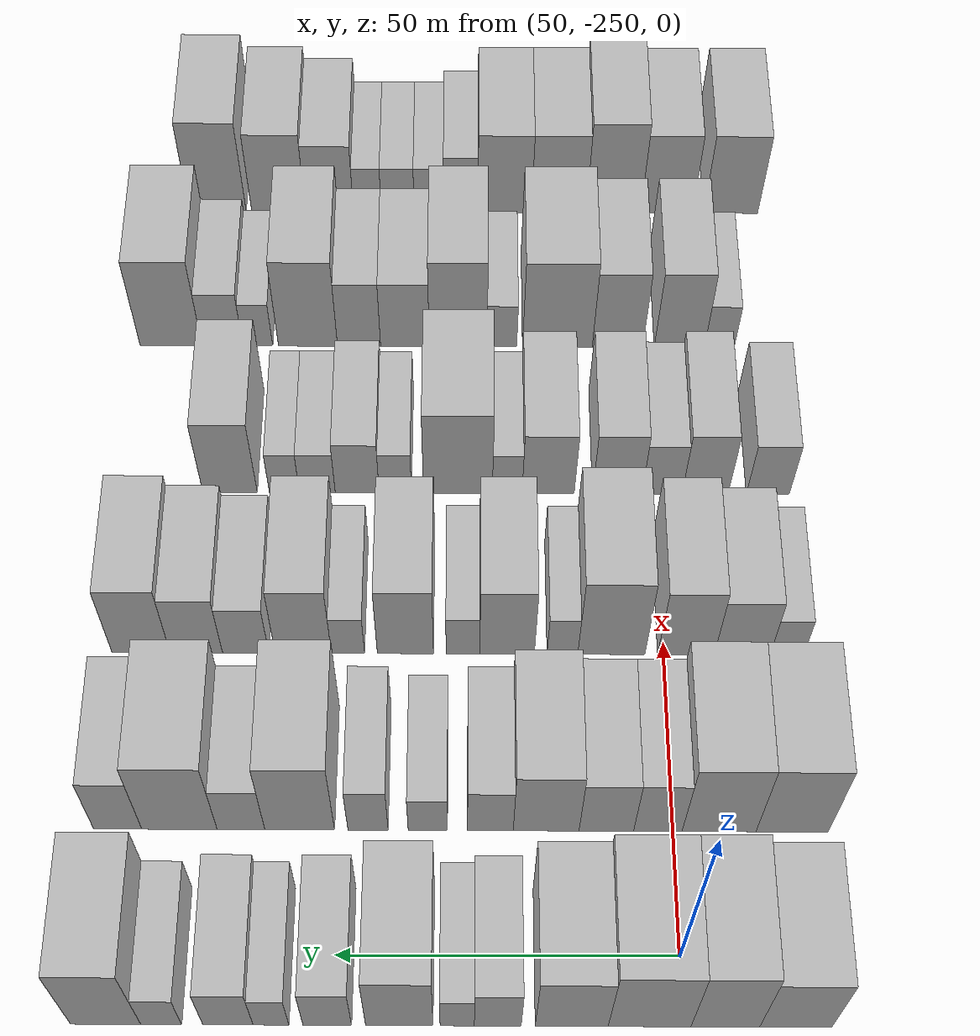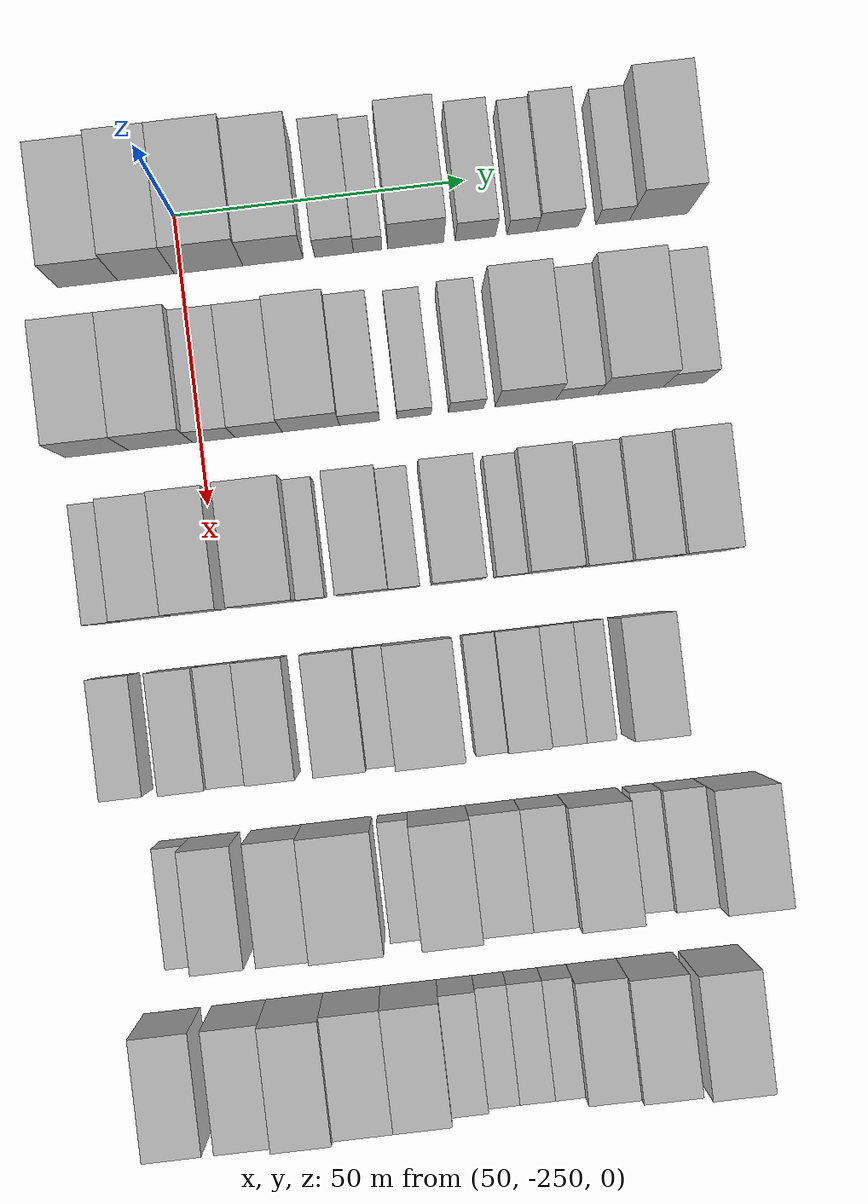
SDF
<sdf version="1.6">
 <world name="default">
  <model name="building_17">
   <static>1</static>
   <pose>50.0000 -265.9230 0 0.000000 0.000000 0.000000</pose>
   <link name="link">
    <pose>0 0 10.50 0 0 0</pose>
    <collision name="collision"><geometry><box><size>20.0000 10.2596 21.0000</size></box></geometry></collision>
    <visual name="visual">
     <cast_shadows>0</cast_shadows>
     <geometry><box><size>20.0000 10.2596 21.0000</size></box></geometry>
     <material>
      <script>
       <uri>model://HANNAS_wall/materials/scripts</uri>
       <uri>model://HANNAS_wall/materials/textures</uri>
       <name>vrc/HANNAS_wall</name>
      </script>
     </material>
    </visual>
   </link>
  </model>
  <model name="building_18">
   <static>1</static>
   <pose>50.0000 -255.9049 0 0.000000 0.000000 0.000000</pose>
   <link name="link">
    <pose>0 0 12.00 0 0 0</pose>
    <collision name="collision"><geometry><box><size>20.0000 9.7765 24.0000</size></box></geometry></collision>
    <visual name="visual">
     <cast_shadows>0</cast_shadows>
     <geometry><box><size>20.0000 9.7765 24.0000</size></box></geometry>
     <material>
      <script>
       <uri>model://HANNAS_wall/materials/scripts</uri>
       <uri>model://HANNAS_wall/materials/textures</uri>
       <name>vrc/HANNAS_wall</name>
      </script>
     </material>
    </visual>
   </link>
  </model>
  <model name="building_19">
   <static>1</static>
   <pose>50.0000 -245.1341 0 0.000000 0.000000 0.000000</pose>
   <link name="link">
    <pose>0 0 12.00 0 0 0</pose>
    <collision name="collision"><geometry><box><size>20.0000 11.7652 24.0000</size></box></geometry></collision>
    <visual name="visual">
     <cast_shadows>0</cast_shadows>
     <geometry><box><size>20.0000 11.7652 24.0000</size></box></geometry>
     <material>
      <script>
       <uri>model://HANNAS_wall/materials/scripts</uri>
       <uri>model://HANNAS_wall/materials/textures</uri>
       <name>vrc/HANNAS_wall</name>
      </script>
     </material>
    </visual>
   </link>
  </model>
  <model name="building_20">
   <static>1</static>
   <pose>50.0000 -234.0665 0 0.000000 0.000000 0.000000</pose>
   <link name="link">
    <pose>0 0 10.50 0 0 0</pose>
    <collision name="collision"><geometry><box><size>20.0000 10.3699 21.0000</size></box></geometry></collision>
    <visual name="visual">
     <cast_shadows>0</cast_shadows>
     <geometry><box><size>20.0000 10.3699 21.0000</size></box></geometry>
     <material>
      <script>
       <uri>model://HANNAS_wall/materials/scripts</uri>
       <uri>model://HANNAS_wall/materials/textures</uri>
       <name>vrc/HANNAS_wall</name>
      </script>
     </material>
    </visual>
   </link>
  </model>
  <model name="building_21">
   <static>1</static>
   <pose>50.0000 -223.5535 0 0.000000 0.000000 0.000000</pose>
   <link name="link">
    <pose>0 0 7.50 0 0 0</pose>
    <collision name="collision"><geometry><box><size>20.0000 6.6561 15.0000</size></box></geometry></collision>
    <visual name="visual">
     <cast_shadows>0</cast_shadows>
     <geometry><box><size>20.0000 6.6561 15.0000</size></box></geometry>
     <material>
      <script>
       <uri>model://HANNAS_wall/materials/scripts</uri>
       <uri>model://HANNAS_wall/materials/textures</uri>
       <name>vrc/HANNAS_wall</name>
      </script>
     </material>
    </visual>
   </link>
  </model>
  <model name="building_22">
   <static>1</static>
   <pose>50.0000 -217.7950 0 0.000000 0.000000 0.000000</pose>
   <link name="link">
    <pose>0 0 6.00 0 0 0</pose>
    <collision name="collision"><geometry><box><size>20.0000 4.8610 12.0000</size></box></geometry></collision>
    <visual name="visual">
     <cast_shadows>0</cast_shadows>
     <geometry><box><size>20.0000 4.8610 12.0000</size></box></geometry>
     <material>
      <script>
       <uri>model://HANNAS_wall/materials/scripts</uri>
       <uri>model://HANNAS_wall/materials/textures</uri>
       <name>vrc/HANNAS_wall</name>
      </script>
     </material>
    </visual>
   </link>
  </model>
  <model name="building_23">
   <static>1</static>
   <pose>50.0000 -209.5757 0 0.000000 0.000000 0.000000</pose>
   <link name="link">
    <pose>0 0 10.50 0 0 0</pose>
    <collision name="collision"><geometry><box><size>20.0000 9.5776 21.0000</size></box></geometry></collision>
    <visual name="visual">
     <cast_shadows>0</cast_shadows>
     <geometry><box><size>20.0000 9.5776 21.0000</size></box></geometry>
     <material>
      <script>
       <uri>model://HANNAS_wall/materials/scripts</uri>
       <uri>model://HANNAS_wall/materials/textures</uri>
       <name>vrc/HANNAS_wall</name>
      </script>
     </material>
    </visual>
   </link>
  </model>
  <model name="building_24">
   <static>1</static>
   <pose>50.0000 -199.3336 0 0.000000 0.000000 0.000000</pose>
   <link name="link">
    <pose>0 0 7.50 0 0 0</pose>
    <collision name="collision"><geometry><box><size>20.0000 6.9065 15.0000</size></box></geometry></collision>
    <visual name="visual">
     <cast_shadows>0</cast_shadows>
     <geometry><box><size>20.0000 6.9065 15.0000</size></box></geometry>
     <material>
      <script>
       <uri>model://HANNAS_wall/materials/scripts</uri>
       <uri>model://HANNAS_wall/materials/textures</uri>
       <name>vrc/HANNAS_wall</name>
      </script>
     </material>
    </visual>
   </link>
  </model>
  <model name="building_25">
   <static>1</static>
   <pose>50.0000 -191.3330 0 0.000000 0.000000 0.000000</pose>
   <link name="link">
    <pose>0 0 6.00 0 0 0</pose>
    <collision name="collision"><geometry><box><size>20.0000 5.0947 12.0000</size></box></geometry></collision>
    <visual name="visual">
     <cast_shadows>0</cast_shadows>
     <geometry><box><size>20.0000 5.0947 12.0000</size></box></geometry>
     <material>
      <script>
       <uri>model://HANNAS_wall/materials/scripts</uri>
       <uri>model://HANNAS_wall/materials/textures</uri>
       <name>vrc/HANNAS_wall</name>
      </script>
     </material>
    </visual>
   </link>
  </model>
  <model name="building_26">
   <static>1</static>
   <pose>50.0000 -185.2077 0 0.000000 0.000000 0.000000</pose>
   <link name="link">
    <pose>0 0 7.50 0 0 0</pose>
    <collision name="collision"><geometry><box><size>20.0000 7.1559 15.0000</size></box></geometry></collision>
    <visual name="visual">
     <cast_shadows>0</cast_shadows>
     <geometry><box><size>20.0000 7.1559 15.0000</size></box></geometry>
     <material>
      <script>
       <uri>model://HANNAS_wall/materials/scripts</uri>
       <uri>model://HANNAS_wall/materials/textures</uri>
       <name>vrc/HANNAS_wall</name>
      </script>
     </material>
    </visual>
   </link>
  </model>
  <model name="building_27">
   <static>1</static>
   <pose>50.0000 -175.7184 0 0.000000 0.000000 0.000000</pose>
   <link name="link">
    <pose>0 0 6.00 0 0 0</pose>
    <collision name="collision"><geometry><box><size>20.0000 5.8227 12.0000</size></box></geometry></collision>
    <visual name="visual">
     <cast_shadows>0</cast_shadows>
     <geometry><box><size>20.0000 5.8227 12.0000</size></box></geometry>
     <material>
      <script>
       <uri>model://HANNAS_wall/materials/scripts</uri>
       <uri>model://HANNAS_wall/materials/textures</uri>
       <name>vrc/HANNAS_wall</name>
      </script>
     </material>
    </visual>
   </link>
  </model>
  <model name="building_28">
   <static>1</static>
   <pose>50.0000 -167.8051 0 0.000000 0.000000 0.000000</pose>
   <link name="link">
    <pose>0 0 12.00 0 0 0</pose>
    <collision name="collision"><geometry><box><size>20.0000 10.0038 24.0000</size></box></geometry></collision>
    <visual name="visual">
     <cast_shadows>0</cast_shadows>
     <geometry><box><size>20.0000 10.0038 24.0000</size></box></geometry>
     <material>
      <script>
       <uri>model://HANNAS_wall/materials/scripts</uri>
       <uri>model://HANNAS_wall/materials/textures</uri>
       <name>vrc/HANNAS_wall</name>
      </script>
     </material>
    </visual>
   </link>
  </model>
  <model name="building_123">
   <static>1</static>
   <pose>79.0000 -267.7699 0 0.000000 0.000000 0.000000</pose>
   <link name="link">
    <pose>0 0 12.00 0 0 0</pose>
    <collision name="collision"><geometry><box><size>20.0000 10.8121 24.0000</size></box></geometry></collision>
    <visual name="visual">
     <cast_shadows>0</cast_shadows>
     <geometry><box><size>20.0000 10.8121 24.0000</size></box></geometry>
     <material>
      <script>
       <uri>model://HANNAS_wall/materials/scripts</uri>
       <uri>model://HANNAS_wall/materials/textures</uri>
       <name>vrc/HANNAS_wall</name>
      </script>
     </material>
    </visual>
   </link>
  </model>
  <model name="building_124">
   <static>1</static>
   <pose>79.0000 -256.8291 0 0.000000 0.000000 0.000000</pose>
   <link name="link">
    <pose>0 0 12.00 0 0 0</pose>
    <collision name="collision"><geometry><box><size>20.0000 11.0696 24.0000</size></box></geometry></collision>
    <visual name="visual">
     <cast_shadows>0</cast_shadows>
     <geometry><box><size>20.0000 11.0696 24.0000</size></box></geometry>
     <material>
      <script>
       <uri>model://HANNAS_wall/materials/scripts</uri>
       <uri>model://HANNAS_wall/materials/textures</uri>
       <name>vrc/HANNAS_wall</name>
      </script>
     </material>
    </visual>
   </link>
  </model>
  <model name="building_125">
   <static>1</static>
   <pose>79.0000 -247.6704 0 0.000000 0.000000 0.000000</pose>
   <link name="link">
    <pose>0 0 9.00 0 0 0</pose>
    <collision name="collision"><geometry><box><size>20.0000 7.2478 18.0000</size></box></geometry></collision>
    <visual name="visual">
     <cast_shadows>0</cast_shadows>
     <geometry><box><size>20.0000 7.2478 18.0000</size></box></geometry>
     <material>
      <script>
       <uri>model://HANNAS_wall/materials/scripts</uri>
       <uri>model://HANNAS_wall/materials/textures</uri>
       <name>vrc/HANNAS_wall</name>
      </script>
     </material>
    </visual>
   </link>
  </model>
  <model name="building_126">
   <static>1</static>
   <pose>79.0000 -239.9628 0 0.000000 0.000000 0.000000</pose>
   <link name="link">
    <pose>0 0 9.00 0 0 0</pose>
    <collision name="collision"><geometry><box><size>20.0000 8.1674 18.0000</size></box></geometry></collision>
    <visual name="visual">
     <cast_shadows>0</cast_shadows>
     <geometry><box><size>20.0000 8.1674 18.0000</size></box></geometry>
     <material>
      <script>
       <uri>model://HANNAS_wall/materials/scripts</uri>
       <uri>model://HANNAS_wall/materials/textures</uri>
       <name>vrc/HANNAS_wall</name>
      </script>
     </material>
    </visual>
   </link>
  </model>
  <model name="building_127">
   <static>1</static>
   <pose>79.0000 -230.9599 0 0.000000 0.000000 0.000000</pose>
   <link name="link">
    <pose>0 0 10.50 0 0 0</pose>
    <collision name="collision"><geometry><box><size>20.0000 9.8385 21.0000</size></box></geometry></collision>
    <visual name="visual">
     <cast_shadows>0</cast_shadows>
     <geometry><box><size>20.0000 9.8385 21.0000</size></box></geometry>
     <material>
      <script>
       <uri>model://HANNAS_wall/materials/scripts</uri>
       <uri>model://HANNAS_wall/materials/textures</uri>
       <name>vrc/HANNAS_wall</name>
      </script>
     </material>
    </visual>
   </link>
  </model>
  <model name="building_128">
   <static>1</static>
   <pose>79.0000 -222.6155 0 0.000000 0.000000 0.000000</pose>
   <link name="link">
    <pose>0 0 7.50 0 0 0</pose>
    <collision name="collision"><geometry><box><size>20.0000 6.8504 15.0000</size></box></geometry></collision>
    <visual name="visual">
     <cast_shadows>0</cast_shadows>
     <geometry><box><size>20.0000 6.8504 15.0000</size></box></geometry>
     <material>
      <script>
       <uri>model://HANNAS_wall/materials/scripts</uri>
       <uri>model://HANNAS_wall/materials/textures</uri>
       <name>vrc/HANNAS_wall</name>
      </script>
     </material>
    </visual>
   </link>
  </model>
  <model name="building_129">
   <static>1</static>
   <pose>79.0000 -213.2564 0 0.000000 0.000000 0.000000</pose>
   <link name="link">
    <pose>0 0 6.00 0 0 0</pose>
    <collision name="collision"><geometry><box><size>20.0000 5.8678 12.0000</size></box></geometry></collision>
    <visual name="visual">
     <cast_shadows>0</cast_shadows>
     <geometry><box><size>20.0000 5.8678 12.0000</size></box></geometry>
     <material>
      <script>
       <uri>model://HANNAS_wall/materials/scripts</uri>
       <uri>model://HANNAS_wall/materials/textures</uri>
       <name>vrc/HANNAS_wall</name>
      </script>
     </material>
    </visual>
   </link>
  </model>
  <model name="building_130">
   <static>1</static>
   <pose>79.0000 -204.3151 0 0.000000 0.000000 0.000000</pose>
   <link name="link">
    <pose>0 0 7.50 0 0 0</pose>
    <collision name="collision"><geometry><box><size>20.0000 6.0149 15.0000</size></box></geometry></collision>
    <visual name="visual">
     <cast_shadows>0</cast_shadows>
     <geometry><box><size>20.0000 6.0149 15.0000</size></box></geometry>
     <material>
      <script>
       <uri>model://HANNAS_wall/materials/scripts</uri>
       <uri>model://HANNAS_wall/materials/textures</uri>
       <name>vrc/HANNAS_wall</name>
      </script>
     </material>
    </visual>
   </link>
  </model>
  <model name="building_131">
   <static>1</static>
   <pose>79.0000 -194.0829 0 0.000000 0.000000 0.000000</pose>
   <link name="link">
    <pose>0 0 12.00 0 0 0</pose>
    <collision name="collision"><geometry><box><size>20.0000 10.4495 24.0000</size></box></geometry></collision>
    <visual name="visual">
     <cast_shadows>0</cast_shadows>
     <geometry><box><size>20.0000 10.4495 24.0000</size></box></geometry>
     <material>
      <script>
       <uri>model://HANNAS_wall/materials/scripts</uri>
       <uri>model://HANNAS_wall/materials/textures</uri>
       <name>vrc/HANNAS_wall</name>
      </script>
     </material>
    </visual>
   </link>
  </model>
  <model name="building_132">
   <static>1</static>
   <pose>79.0000 -185.2894 0 0.000000 0.000000 0.000000</pose>
   <link name="link">
    <pose>0 0 7.50 0 0 0</pose>
    <collision name="collision"><geometry><box><size>20.0000 7.1373 15.0000</size></box></geometry></collision>
    <visual name="visual">
     <cast_shadows>0</cast_shadows>
     <geometry><box><size>20.0000 7.1373 15.0000</size></box></geometry>
     <material>
      <script>
       <uri>model://HANNAS_wall/materials/scripts</uri>
       <uri>model://HANNAS_wall/materials/textures</uri>
       <name>vrc/HANNAS_wall</name>
      </script>
     </material>
    </visual>
   </link>
  </model>
  <model name="building_133">
   <static>1</static>
   <pose>79.0000 -176.0762 0 0.000000 0.000000 0.000000</pose>
   <link name="link">
    <pose>0 0 12.00 0 0 0</pose>
    <collision name="collision"><geometry><box><size>20.0000 11.2892 24.0000</size></box></geometry></collision>
    <visual name="visual">
     <cast_shadows>0</cast_shadows>
     <geometry><box><size>20.0000 11.2892 24.0000</size></box></geometry>
     <material>
      <script>
       <uri>model://HANNAS_wall/materials/scripts</uri>
       <uri>model://HANNAS_wall/materials/textures</uri>
       <name>vrc/HANNAS_wall</name>
      </script>
     </material>
    </visual>
   </link>
  </model>
  <model name="building_134">
   <static>1</static>
   <pose>79.0000 -166.8294 0 0.000000 0.000000 0.000000</pose>
   <link name="link">
    <pose>0 0 9.00 0 0 0</pose>
    <collision name="collision"><geometry><box><size>20.0000 7.2045 18.0000</size></box></geometry></collision>
    <visual name="visual">
     <cast_shadows>0</cast_shadows>
     <geometry><box><size>20.0000 7.2045 18.0000</size></box></geometry>
     <material>
      <script>
       <uri>model://HANNAS_wall/materials/scripts</uri>
       <uri>model://HANNAS_wall/materials/textures</uri>
       <name>vrc/HANNAS_wall</name>
      </script>
     </material>
    </visual>
   </link>
  </model>
  <model name="building_238">
   <static>1</static>
   <pose>108.0000 -269.2934 0 0.000000 0.000000 0.000000</pose>
   <link name="link">
    <pose>0 0 6.00 0 0 0</pose>
    <collision name="collision"><geometry><box><size>20.0000 5.2739 12.0000</size></box></geometry></collision>
    <visual name="visual">
     <cast_shadows>0</cast_shadows>
     <geometry><box><size>20.0000 5.2739 12.0000</size></box></geometry>
     <material>
      <script>
       <uri>model://HANNAS_wall/materials/scripts</uri>
       <uri>model://HANNAS_wall/materials/textures</uri>
       <name>vrc/HANNAS_wall</name>
      </script>
     </material>
    </visual>
   </link>
  </model>
  <model name="building_239">
   <static>1</static>
   <pose>108.0000 -262.2684 0 0.000000 0.000000 0.000000</pose>
   <link name="link">
    <pose>0 0 9.00 0 0 0</pose>
    <collision name="collision"><geometry><box><size>20.0000 8.7761 18.0000</size></box></geometry></collision>
    <visual name="visual">
     <cast_shadows>0</cast_shadows>
     <geometry><box><size>20.0000 8.7761 18.0000</size></box></geometry>
     <material>
      <script>
       <uri>model://HANNAS_wall/materials/scripts</uri>
       <uri>model://HANNAS_wall/materials/textures</uri>
       <name>vrc/HANNAS_wall</name>
      </script>
     </material>
    </visual>
   </link>
  </model>
  <model name="building_240">
   <static>1</static>
   <pose>108.0000 -253.4354 0 0.000000 0.000000 0.000000</pose>
   <link name="link">
    <pose>0 0 10.50 0 0 0</pose>
    <collision name="collision"><geometry><box><size>20.0000 8.8898 21.0000</size></box></geometry></collision>
    <visual name="visual">
     <cast_shadows>0</cast_shadows>
     <geometry><box><size>20.0000 8.8898 21.0000</size></box></geometry>
     <material>
      <script>
       <uri>model://HANNAS_wall/materials/scripts</uri>
       <uri>model://HANNAS_wall/materials/textures</uri>
       <name>vrc/HANNAS_wall</name>
      </script>
     </material>
    </visual>
   </link>
  </model>
  <model name="building_241">
   <static>1</static>
   <pose>108.0000 -241.7194 0 0.000000 0.000000 0.000000</pose>
   <link name="link">
    <pose>0 0 12.00 0 0 0</pose>
    <collision name="collision"><geometry><box><size>20.0000 10.5423 24.0000</size></box></geometry></collision>
    <visual name="visual">
     <cast_shadows>0</cast_shadows>
     <geometry><box><size>20.0000 10.5423 24.0000</size></box></geometry>
     <material>
      <script>
       <uri>model://HANNAS_wall/materials/scripts</uri>
       <uri>model://HANNAS_wall/materials/textures</uri>
       <name>vrc/HANNAS_wall</name>
      </script>
     </material>
    </visual>
   </link>
  </model>
  <model name="building_242">
   <static>1</static>
   <pose>108.0000 -234.0365 0 0.000000 0.000000 0.000000</pose>
   <link name="link">
    <pose>0 0 6.00 0 0 0</pose>
    <collision name="collision"><geometry><box><size>20.0000 4.8235 12.0000</size></box></geometry></collision>
    <visual name="visual">
     <cast_shadows>0</cast_shadows>
     <geometry><box><size>20.0000 4.8235 12.0000</size></box></geometry>
     <material>
      <script>
       <uri>model://HANNAS_wall/materials/scripts</uri>
       <uri>model://HANNAS_wall/materials/textures</uri>
       <name>vrc/HANNAS_wall</name>
      </script>
     </material>
    </visual>
   </link>
  </model>
  <model name="building_243">
   <static>1</static>
   <pose>108.0000 -225.3271 0 0.000000 0.000000 0.000000</pose>
   <link name="link">
    <pose>0 0 10.50 0 0 0</pose>
    <collision name="collision"><geometry><box><size>20.0000 8.5953 21.0000</size></box></geometry></collision>
    <visual name="visual">
     <cast_shadows>0</cast_shadows>
     <geometry><box><size>20.0000 8.5953 21.0000</size></box></geometry>
     <material>
      <script>
       <uri>model://HANNAS_wall/materials/scripts</uri>
       <uri>model://HANNAS_wall/materials/textures</uri>
       <name>vrc/HANNAS_wall</name>
      </script>
     </material>
    </visual>
   </link>
  </model>
  <model name="building_244">
   <static>1</static>
   <pose>108.0000 -218.4014 0 0.000000 0.000000 0.000000</pose>
   <link name="link">
    <pose>0 0 6.00 0 0 0</pose>
    <collision name="collision"><geometry><box><size>20.0000 5.2560 12.0000</size></box></geometry></collision>
    <visual name="visual">
     <cast_shadows>0</cast_shadows>
     <geometry><box><size>20.0000 5.2560 12.0000</size></box></geometry>
     <material>
      <script>
       <uri>model://HANNAS_wall/materials/scripts</uri>
       <uri>model://HANNAS_wall/materials/textures</uri>
       <name>vrc/HANNAS_wall</name>
      </script>
     </material>
    </visual>
   </link>
  </model>
  <model name="building_245">
   <static>1</static>
   <pose>108.0000 -209.3678 0 0.000000 0.000000 0.000000</pose>
   <link name="link">
    <pose>0 0 10.50 0 0 0</pose>
    <collision name="collision"><geometry><box><size>20.0000 8.8113 21.0000</size></box></geometry></collision>
    <visual name="visual">
     <cast_shadows>0</cast_shadows>
     <geometry><box><size>20.0000 8.8113 21.0000</size></box></geometry>
     <material>
      <script>
       <uri>model://HANNAS_wall/materials/scripts</uri>
       <uri>model://HANNAS_wall/materials/textures</uri>
       <name>vrc/HANNAS_wall</name>
      </script>
     </material>
    </visual>
   </link>
  </model>
  <model name="building_246">
   <static>1</static>
   <pose>108.0000 -200.3536 0 0.000000 0.000000 0.000000</pose>
   <link name="link">
    <pose>0 0 6.00 0 0 0</pose>
    <collision name="collision"><geometry><box><size>20.0000 5.2170 12.0000</size></box></geometry></collision>
    <visual name="visual">
     <cast_shadows>0</cast_shadows>
     <geometry><box><size>20.0000 5.2170 12.0000</size></box></geometry>
     <material>
      <script>
       <uri>model://HANNAS_wall/materials/scripts</uri>
       <uri>model://HANNAS_wall/materials/textures</uri>
       <name>vrc/HANNAS_wall</name>
      </script>
     </material>
    </visual>
   </link>
  </model>
  <model name="building_247">
   <static>1</static>
   <pose>108.0000 -193.3295 0 0.000000 0.000000 0.000000</pose>
   <link name="link">
    <pose>0 0 10.50 0 0 0</pose>
    <collision name="collision"><geometry><box><size>20.0000 8.8313 21.0000</size></box></geometry></collision>
    <visual name="visual">
     <cast_shadows>0</cast_shadows>
     <geometry><box><size>20.0000 8.8313 21.0000</size></box></geometry>
     <material>
      <script>
       <uri>model://HANNAS_wall/materials/scripts</uri>
       <uri>model://HANNAS_wall/materials/textures</uri>
       <name>vrc/HANNAS_wall</name>
      </script>
     </material>
    </visual>
   </link>
  </model>
  <model name="building_248">
   <static>1</static>
   <pose>108.0000 -184.2776 0 0.000000 0.000000 0.000000</pose>
   <link name="link">
    <pose>0 0 7.50 0 0 0</pose>
    <collision name="collision"><geometry><box><size>20.0000 7.2723 15.0000</size></box></geometry></collision>
    <visual name="visual">
     <cast_shadows>0</cast_shadows>
     <geometry><box><size>20.0000 7.2723 15.0000</size></box></geometry>
     <material>
      <script>
       <uri>model://HANNAS_wall/materials/scripts</uri>
       <uri>model://HANNAS_wall/materials/textures</uri>
       <name>vrc/HANNAS_wall</name>
      </script>
     </material>
    </visual>
   </link>
  </model>
  <model name="building_249">
   <static>1</static>
   <pose>108.0000 -176.5142 0 0.000000 0.000000 0.000000</pose>
   <link name="link">
    <pose>0 0 9.00 0 0 0</pose>
    <collision name="collision"><geometry><box><size>20.0000 8.2546 18.0000</size></box></geometry></collision>
    <visual name="visual">
     <cast_shadows>0</cast_shadows>
     <geometry><box><size>20.0000 8.2546 18.0000</size></box></geometry>
     <material>
      <script>
       <uri>model://HANNAS_wall/materials/scripts</uri>
       <uri>model://HANNAS_wall/materials/textures</uri>
       <name>vrc/HANNAS_wall</name>
      </script>
     </material>
    </visual>
   </link>
  </model>
  <model name="building_250">
   <static>1</static>
   <pose>108.0000 -167.8131 0 0.000000 0.000000 0.000000</pose>
   <link name="link">
    <pose>0 0 10.50 0 0 0</pose>
    <collision name="collision"><geometry><box><size>20.0000 9.1476 21.0000</size></box></geometry></collision>
    <visual name="visual">
     <cast_shadows>0</cast_shadows>
     <geometry><box><size>20.0000 9.1476 21.0000</size></box></geometry>
     <material>
      <script>
       <uri>model://HANNAS_wall/materials/scripts</uri>
       <uri>model://HANNAS_wall/materials/textures</uri>
       <name>vrc/HANNAS_wall</name>
      </script>
     </material>
    </visual>
   </link>
  </model>
  <model name="building_349">
   <static>1</static>
   <pose>137.0000 -268.4893 0 0.000000 0.000000 0.000000</pose>
   <link name="link">
    <pose>0 0 7.50 0 0 0</pose>
    <collision name="collision"><geometry><box><size>20.0000 7.0741 15.0000</size></box></geometry></collision>
    <visual name="visual">
     <cast_shadows>0</cast_shadows>
     <geometry><box><size>20.0000 7.0741 15.0000</size></box></geometry>
     <material>
      <script>
       <uri>model://HANNAS_wall/materials/scripts</uri>
       <uri>model://HANNAS_wall/materials/textures</uri>
       <name>vrc/HANNAS_wall</name>
      </script>
     </material>
    </visual>
   </link>
  </model>
  <model name="building_350">
   <static>1</static>
   <pose>137.0000 -258.1589 0 0.000000 0.000000 0.000000</pose>
   <link name="link">
    <pose>0 0 9.00 0 0 0</pose>
    <collision name="collision"><geometry><box><size>20.0000 7.5866 18.0000</size></box></geometry></collision>
    <visual name="visual">
     <cast_shadows>0</cast_shadows>
     <geometry><box><size>20.0000 7.5866 18.0000</size></box></geometry>
     <material>
      <script>
       <uri>model://HANNAS_wall/materials/scripts</uri>
       <uri>model://HANNAS_wall/materials/textures</uri>
       <name>vrc/HANNAS_wall</name>
      </script>
     </material>
    </visual>
   </link>
  </model>
  <model name="building_351">
   <static>1</static>
   <pose>137.0000 -251.0743 0 0.000000 0.000000 0.000000</pose>
   <link name="link">
    <pose>0 0 7.50 0 0 0</pose>
    <collision name="collision"><geometry><box><size>20.0000 6.5825 15.0000</size></box></geometry></collision>
    <visual name="visual">
     <cast_shadows>0</cast_shadows>
     <geometry><box><size>20.0000 6.5825 15.0000</size></box></geometry>
     <material>
      <script>
       <uri>model://HANNAS_wall/materials/scripts</uri>
       <uri>model://HANNAS_wall/materials/textures</uri>
       <name>vrc/HANNAS_wall</name>
      </script>
     </material>
    </visual>
   </link>
  </model>
  <model name="building_352">
   <static>1</static>
   <pose>137.0000 -243.6997 0 0.000000 0.000000 0.000000</pose>
   <link name="link">
    <pose>0 0 9.00 0 0 0</pose>
    <collision name="collision"><geometry><box><size>20.0000 8.1667 18.0000</size></box></geometry></collision>
    <visual name="visual">
     <cast_shadows>0</cast_shadows>
     <geometry><box><size>20.0000 8.1667 18.0000</size></box></geometry>
     <material>
      <script>
       <uri>model://HANNAS_wall/materials/scripts</uri>
       <uri>model://HANNAS_wall/materials/textures</uri>
       <name>vrc/HANNAS_wall</name>
      </script>
     </material>
    </visual>
   </link>
  </model>
  <model name="building_353">
   <static>1</static>
   <pose>137.0000 -232.3319 0 0.000000 0.000000 0.000000</pose>
   <link name="link">
    <pose>0 0 9.00 0 0 0</pose>
    <collision name="collision"><geometry><box><size>20.0000 8.5690 18.0000</size></box></geometry></collision>
    <visual name="visual">
     <cast_shadows>0</cast_shadows>
     <geometry><box><size>20.0000 8.5690 18.0000</size></box></geometry>
     <material>
      <script>
       <uri>model://HANNAS_wall/materials/scripts</uri>
       <uri>model://HANNAS_wall/materials/textures</uri>
       <name>vrc/HANNAS_wall</name>
      </script>
     </material>
    </visual>
   </link>
  </model>
  <model name="building_354">
   <static>1</static>
   <pose>137.0000 -225.5906 0 0.000000 0.000000 0.000000</pose>
   <link name="link">
    <pose>0 0 6.00 0 0 0</pose>
    <collision name="collision"><geometry><box><size>20.0000 4.9134 12.0000</size></box></geometry></collision>
    <visual name="visual">
     <cast_shadows>0</cast_shadows>
     <geometry><box><size>20.0000 4.9134 12.0000</size></box></geometry>
     <material>
      <script>
       <uri>model://HANNAS_wall/materials/scripts</uri>
       <uri>model://HANNAS_wall/materials/textures</uri>
       <name>vrc/HANNAS_wall</name>
      </script>
     </material>
    </visual>
   </link>
  </model>
  <model name="building_355">
   <static>1</static>
   <pose>137.0000 -217.4889 0 0.000000 0.000000 0.000000</pose>
   <link name="link">
    <pose>0 0 12.00 0 0 0</pose>
    <collision name="collision"><geometry><box><size>20.0000 11.2902 24.0000</size></box></geometry></collision>
    <visual name="visual">
     <cast_shadows>0</cast_shadows>
     <geometry><box><size>20.0000 11.2902 24.0000</size></box></geometry>
     <material>
      <script>
       <uri>model://HANNAS_wall/materials/scripts</uri>
       <uri>model://HANNAS_wall/materials/textures</uri>
       <name>vrc/HANNAS_wall</name>
      </script>
     </material>
    </visual>
   </link>
  </model>
  <model name="building_356">
   <static>1</static>
   <pose>137.0000 -207.1839 0 0.000000 0.000000 0.000000</pose>
   <link name="link">
    <pose>0 0 6.00 0 0 0</pose>
    <collision name="collision"><geometry><box><size>20.0000 5.3197 12.0000</size></box></geometry></collision>
    <visual name="visual">
     <cast_shadows>0</cast_shadows>
     <geometry><box><size>20.0000 5.3197 12.0000</size></box></geometry>
     <material>
      <script>
       <uri>model://HANNAS_wall/materials/scripts</uri>
       <uri>model://HANNAS_wall/materials/textures</uri>
       <name>vrc/HANNAS_wall</name>
      </script>
     </material>
    </visual>
   </link>
  </model>
  <model name="building_357">
   <static>1</static>
   <pose>137.0000 -200.9092 0 0.000000 0.000000 0.000000</pose>
   <link name="link">
    <pose>0 0 7.50 0 0 0</pose>
    <collision name="collision"><geometry><box><size>20.0000 7.2299 15.0000</size></box></geometry></collision>
    <visual name="visual">
     <cast_shadows>0</cast_shadows>
     <geometry><box><size>20.0000 7.2299 15.0000</size></box></geometry>
     <material>
      <script>
       <uri>model://HANNAS_wall/materials/scripts</uri>
       <uri>model://HANNAS_wall/materials/textures</uri>
       <name>vrc/HANNAS_wall</name>
      </script>
     </material>
    </visual>
   </link>
  </model>
  <model name="building_358">
   <static>1</static>
   <pose>137.0000 -194.3370 0 0.000000 0.000000 0.000000</pose>
   <link name="link">
    <pose>0 0 6.00 0 0 0</pose>
    <collision name="collision"><geometry><box><size>20.0000 5.9145 12.0000</size></box></geometry></collision>
    <visual name="visual">
     <cast_shadows>0</cast_shadows>
     <geometry><box><size>20.0000 5.9145 12.0000</size></box></geometry>
     <material>
      <script>
       <uri>model://HANNAS_wall/materials/scripts</uri>
       <uri>model://HANNAS_wall/materials/textures</uri>
       <name>vrc/HANNAS_wall</name>
      </script>
     </material>
    </visual>
   </link>
  </model>
  <model name="building_359">
   <static>1</static>
   <pose>137.0000 -188.9132 0 0.000000 0.000000 0.000000</pose>
   <link name="link">
    <pose>0 0 6.00 0 0 0</pose>
    <collision name="collision"><geometry><box><size>20.0000 4.9332 12.0000</size></box></geometry></collision>
    <visual name="visual">
     <cast_shadows>0</cast_shadows>
     <geometry><box><size>20.0000 4.9332 12.0000</size></box></geometry>
     <material>
      <script>
       <uri>model://HANNAS_wall/materials/scripts</uri>
       <uri>model://HANNAS_wall/materials/textures</uri>
       <name>vrc/HANNAS_wall</name>
      </script>
     </material>
    </visual>
   </link>
  </model>
  <model name="building_360">
   <static>1</static>
   <pose>137.0000 -179.9646 0 0.000000 0.000000 0.000000</pose>
   <link name="link">
    <pose>0 0 10.50 0 0 0</pose>
    <collision name="collision"><geometry><box><size>20.0000 8.9639 21.0000</size></box></geometry></collision>
    <visual name="visual">
     <cast_shadows>0</cast_shadows>
     <geometry><box><size>20.0000 8.9639 21.0000</size></box></geometry>
     <material>
      <script>
       <uri>model://HANNAS_wall/materials/scripts</uri>
       <uri>model://HANNAS_wall/materials/textures</uri>
       <name>vrc/HANNAS_wall</name>
      </script>
     </material>
    </visual>
   </link>
  </model>
  <model name="building_464">
   <static>1</static>
   <pose>166.0000 -262.3400 0 0.000000 0.000000 0.000000</pose>
   <link name="link">
    <pose>0 0 6.00 0 0 0</pose>
    <collision name="collision"><geometry><box><size>20.0000 5.1144 12.0000</size></box></geometry></collision>
    <visual name="visual">
     <cast_shadows>0</cast_shadows>
     <geometry><box><size>20.0000 5.1144 12.0000</size></box></geometry>
     <material>
      <script>
       <uri>model://HANNAS_wall/materials/scripts</uri>
       <uri>model://HANNAS_wall/materials/textures</uri>
       <name>vrc/HANNAS_wall</name>
      </script>
     </material>
    </visual>
   </link>
  </model>
  <model name="building_465">
   <static>1</static>
   <pose>166.0000 -255.4600 0 0.000000 0.000000 0.000000</pose>
   <link name="link">
    <pose>0 0 10.50 0 0 0</pose>
    <collision name="collision"><geometry><box><size>20.0000 8.6457 21.0000</size></box></geometry></collision>
    <visual name="visual">
     <cast_shadows>0</cast_shadows>
     <geometry><box><size>20.0000 8.6457 21.0000</size></box></geometry>
     <material>
      <script>
       <uri>model://HANNAS_wall/materials/scripts</uri>
       <uri>model://HANNAS_wall/materials/textures</uri>
       <name>vrc/HANNAS_wall</name>
      </script>
     </material>
    </visual>
   </link>
  </model>
  <model name="building_466">
   <static>1</static>
   <pose>166.0000 -244.7963 0 0.000000 0.000000 0.000000</pose>
   <link name="link">
    <pose>0 0 10.50 0 0 0</pose>
    <collision name="collision"><geometry><box><size>20.0000 8.6817 21.0000</size></box></geometry></collision>
    <visual name="visual">
     <cast_shadows>0</cast_shadows>
     <geometry><box><size>20.0000 8.6817 21.0000</size></box></geometry>
     <material>
      <script>
       <uri>model://HANNAS_wall/materials/scripts</uri>
       <uri>model://HANNAS_wall/materials/textures</uri>
       <name>vrc/HANNAS_wall</name>
      </script>
     </material>
    </visual>
   </link>
  </model>
  <model name="building_467">
   <static>1</static>
   <pose>166.0000 -234.4574 0 0.000000 0.000000 0.000000</pose>
   <link name="link">
    <pose>0 0 12.00 0 0 0</pose>
    <collision name="collision"><geometry><box><size>20.0000 11.9962 24.0000</size></box></geometry></collision>
    <visual name="visual">
     <cast_shadows>0</cast_shadows>
     <geometry><box><size>20.0000 11.9962 24.0000</size></box></geometry>
     <material>
      <script>
       <uri>model://HANNAS_wall/materials/scripts</uri>
       <uri>model://HANNAS_wall/materials/textures</uri>
       <name>vrc/HANNAS_wall</name>
      </script>
     </material>
    </visual>
   </link>
  </model>
  <model name="building_468">
   <static>1</static>
   <pose>166.0000 -224.8741 0 0.000000 0.000000 0.000000</pose>
   <link name="link">
    <pose>0 0 6.00 0 0 0</pose>
    <collision name="collision"><geometry><box><size>20.0000 5.1704 12.0000</size></box></geometry></collision>
    <visual name="visual">
     <cast_shadows>0</cast_shadows>
     <geometry><box><size>20.0000 5.1704 12.0000</size></box></geometry>
     <material>
      <script>
       <uri>model://HANNAS_wall/materials/scripts</uri>
       <uri>model://HANNAS_wall/materials/textures</uri>
       <name>vrc/HANNAS_wall</name>
      </script>
     </material>
    </visual>
   </link>
  </model>
  <model name="building_469">
   <static>1</static>
   <pose>166.0000 -217.3538 0 0.000000 0.000000 0.000000</pose>
   <link name="link">
    <pose>0 0 12.00 0 0 0</pose>
    <collision name="collision"><geometry><box><size>20.0000 9.8701 24.0000</size></box></geometry></collision>
    <visual name="visual">
     <cast_shadows>0</cast_shadows>
     <geometry><box><size>20.0000 9.8701 24.0000</size></box></geometry>
     <material>
      <script>
       <uri>model://HANNAS_wall/materials/scripts</uri>
       <uri>model://HANNAS_wall/materials/textures</uri>
       <name>vrc/HANNAS_wall</name>
      </script>
     </material>
    </visual>
   </link>
  </model>
  <model name="building_470">
   <static>1</static>
   <pose>166.0000 -208.2286 0 0.000000 0.000000 0.000000</pose>
   <link name="link">
    <pose>0 0 9.00 0 0 0</pose>
    <collision name="collision"><geometry><box><size>20.0000 8.3804 18.0000</size></box></geometry></collision>
    <visual name="visual">
     <cast_shadows>0</cast_shadows>
     <geometry><box><size>20.0000 8.3804 18.0000</size></box></geometry>
     <material>
      <script>
       <uri>model://HANNAS_wall/materials/scripts</uri>
       <uri>model://HANNAS_wall/materials/textures</uri>
       <name>vrc/HANNAS_wall</name>
      </script>
     </material>
    </visual>
   </link>
  </model>
  <model name="building_471">
   <static>1</static>
   <pose>166.0000 -200.3315 0 0.000000 0.000000 0.000000</pose>
   <link name="link">
    <pose>0 0 9.00 0 0 0</pose>
    <collision name="collision"><geometry><box><size>20.0000 7.4138 18.0000</size></box></geometry></collision>
    <visual name="visual">
     <cast_shadows>0</cast_shadows>
     <geometry><box><size>20.0000 7.4138 18.0000</size></box></geometry>
     <material>
      <script>
       <uri>model://HANNAS_wall/materials/scripts</uri>
       <uri>model://HANNAS_wall/materials/textures</uri>
       <name>vrc/HANNAS_wall</name>
      </script>
     </material>
    </visual>
   </link>
  </model>
  <model name="building_472">
   <static>1</static>
   <pose>166.0000 -191.5421 0 0.000000 0.000000 0.000000</pose>
   <link name="link">
    <pose>0 0 12.00 0 0 0</pose>
    <collision name="collision"><geometry><box><size>20.0000 10.1650 24.0000</size></box></geometry></collision>
    <visual name="visual">
     <cast_shadows>0</cast_shadows>
     <geometry><box><size>20.0000 10.1650 24.0000</size></box></geometry>
     <material>
      <script>
       <uri>model://HANNAS_wall/materials/scripts</uri>
       <uri>model://HANNAS_wall/materials/textures</uri>
       <name>vrc/HANNAS_wall</name>
      </script>
     </material>
    </visual>
   </link>
  </model>
  <model name="building_473">
   <static>1</static>
   <pose>166.0000 -182.8935 0 0.000000 0.000000 0.000000</pose>
   <link name="link">
    <pose>0 0 6.00 0 0 0</pose>
    <collision name="collision"><geometry><box><size>20.0000 5.1324 12.0000</size></box></geometry></collision>
    <visual name="visual">
     <cast_shadows>0</cast_shadows>
     <geometry><box><size>20.0000 5.1324 12.0000</size></box></geometry>
     <material>
      <script>
       <uri>model://HANNAS_wall/materials/scripts</uri>
       <uri>model://HANNAS_wall/materials/textures</uri>
       <name>vrc/HANNAS_wall</name>
      </script>
     </material>
    </visual>
   </link>
  </model>
  <model name="building_474">
   <static>1</static>
   <pose>166.0000 -176.7986 0 0.000000 0.000000 0.000000</pose>
   <link name="link">
    <pose>0 0 7.50 0 0 0</pose>
    <collision name="collision"><geometry><box><size>20.0000 7.0573 15.0000</size></box></geometry></collision>
    <visual name="visual">
     <cast_shadows>0</cast_shadows>
     <geometry><box><size>20.0000 7.0573 15.0000</size></box></geometry>
     <material>
      <script>
       <uri>model://HANNAS_wall/materials/scripts</uri>
       <uri>model://HANNAS_wall/materials/textures</uri>
       <name>vrc/HANNAS_wall</name>
      </script>
     </material>
    </visual>
   </link>
  </model>
  <model name="building_475">
   <static>1</static>
   <pose>166.0000 -167.9467 0 0.000000 0.000000 0.000000</pose>
   <link name="link">
    <pose>0 0 12.00 0 0 0</pose>
    <collision name="collision"><geometry><box><size>20.0000 10.6465 24.0000</size></box></geometry></collision>
    <visual name="visual">
     <cast_shadows>0</cast_shadows>
     <geometry><box><size>20.0000 10.6465 24.0000</size></box></geometry>
     <material>
      <script>
       <uri>model://HANNAS_wall/materials/scripts</uri>
       <uri>model://HANNAS_wall/materials/textures</uri>
       <name>vrc/HANNAS_wall</name>
      </script>
     </material>
    </visual>
   </link>
  </model>
  <model name="building_575">
   <static>1</static>
   <pose>195.0000 -266.1814 0 0.000000 0.000000 0.000000</pose>
   <link name="link">
    <pose>0 0 10.50 0 0 0</pose>
    <collision name="collision"><geometry><box><size>20.0000 9.7161 21.0000</size></box></geometry></collision>
    <visual name="visual">
     <cast_shadows>0</cast_shadows>
     <geometry><box><size>20.0000 9.7161 21.0000</size></box></geometry>
     <material>
      <script>
       <uri>model://HANNAS_wall/materials/scripts</uri>
       <uri>model://HANNAS_wall/materials/textures</uri>
       <name>vrc/HANNAS_wall</name>
      </script>
     </material>
    </visual>
   </link>
  </model>
  <model name="building_576">
   <static>1</static>
   <pose>195.0000 -254.6642 0 0.000000 0.000000 0.000000</pose>
   <link name="link">
    <pose>0 0 10.50 0 0 0</pose>
    <collision name="collision"><geometry><box><size>20.0000 9.3183 21.0000</size></box></geometry></collision>
    <visual name="visual">
     <cast_shadows>0</cast_shadows>
     <geometry><box><size>20.0000 9.3183 21.0000</size></box></geometry>
     <material>
      <script>
       <uri>model://HANNAS_wall/materials/scripts</uri>
       <uri>model://HANNAS_wall/materials/textures</uri>
       <name>vrc/HANNAS_wall</name>
      </script>
     </material>
    </visual>
   </link>
  </model>
  <model name="building_577">
   <static>1</static>
   <pose>195.0000 -245.1073 0 0.000000 0.000000 0.000000</pose>
   <link name="link">
    <pose>0 0 12.00 0 0 0</pose>
    <collision name="collision"><geometry><box><size>20.0000 9.7956 24.0000</size></box></geometry></collision>
    <visual name="visual">
     <cast_shadows>0</cast_shadows>
     <geometry><box><size>20.0000 9.7956 24.0000</size></box></geometry>
     <material>
      <script>
       <uri>model://HANNAS_wall/materials/scripts</uri>
       <uri>model://HANNAS_wall/materials/textures</uri>
       <name>vrc/HANNAS_wall</name>
      </script>
     </material>
    </visual>
   </link>
  </model>
  <model name="building_578">
   <static>1</static>
   <pose>195.0000 -235.3030 0 0.000000 0.000000 0.000000</pose>
   <link name="link">
    <pose>0 0 10.50 0 0 0</pose>
    <collision name="collision"><geometry><box><size>20.0000 9.8131 21.0000</size></box></geometry></collision>
    <visual name="visual">
     <cast_shadows>0</cast_shadows>
     <geometry><box><size>20.0000 9.8131 21.0000</size></box></geometry>
     <material>
      <script>
       <uri>model://HANNAS_wall/materials/scripts</uri>
       <uri>model://HANNAS_wall/materials/textures</uri>
       <name>vrc/HANNAS_wall</name>
      </script>
     </material>
    </visual>
   </link>
  </model>
  <model name="building_579">
   <static>1</static>
   <pose>195.0000 -225.5866 0 0.000000 0.000000 0.000000</pose>
   <link name="link">
    <pose>0 0 10.50 0 0 0</pose>
    <collision name="collision"><geometry><box><size>20.0000 9.6196 21.0000</size></box></geometry></collision>
    <visual name="visual">
     <cast_shadows>0</cast_shadows>
     <geometry><box><size>20.0000 9.6196 21.0000</size></box></geometry>
     <material>
      <script>
       <uri>model://HANNAS_wall/materials/scripts</uri>
       <uri>model://HANNAS_wall/materials/textures</uri>
       <name>vrc/HANNAS_wall</name>
      </script>
     </material>
    </visual>
   </link>
  </model>
  <model name="building_580">
   <static>1</static>
   <pose>195.0000 -217.7236 0 0.000000 0.000000 0.000000</pose>
   <link name="link">
    <pose>0 0 7.50 0 0 0</pose>
    <collision name="collision"><geometry><box><size>20.0000 6.1065 15.0000</size></box></geometry></collision>
    <visual name="visual">
     <cast_shadows>0</cast_shadows>
     <geometry><box><size>20.0000 6.1065 15.0000</size></box></geometry>
     <material>
      <script>
       <uri>model://HANNAS_wall/materials/scripts</uri>
       <uri>model://HANNAS_wall/materials/textures</uri>
       <name>vrc/HANNAS_wall</name>
      </script>
     </material>
    </visual>
   </link>
  </model>
  <model name="building_581">
   <static>1</static>
   <pose>195.0000 -212.0157 0 0.000000 0.000000 0.000000</pose>
   <link name="link">
    <pose>0 0 6.00 0 0 0</pose>
    <collision name="collision"><geometry><box><size>20.0000 5.3092 12.0000</size></box></geometry></collision>
    <visual name="visual">
     <cast_shadows>0</cast_shadows>
     <geometry><box><size>20.0000 5.3092 12.0000</size></box></geometry>
     <material>
      <script>
       <uri>model://HANNAS_wall/materials/scripts</uri>
       <uri>model://HANNAS_wall/materials/textures</uri>
       <name>vrc/HANNAS_wall</name>
      </script>
     </material>
    </visual>
   </link>
  </model>
  <model name="building_582">
   <static>1</static>
   <pose>195.0000 -206.4060 0 0.000000 0.000000 0.000000</pose>
   <link name="link">
    <pose>0 0 6.00 0 0 0</pose>
    <collision name="collision"><geometry><box><size>20.0000 5.9101 12.0000</size></box></geometry></collision>
    <visual name="visual">
     <cast_shadows>0</cast_shadows>
     <geometry><box><size>20.0000 5.9101 12.0000</size></box></geometry>
     <material>
      <script>
       <uri>model://HANNAS_wall/materials/scripts</uri>
       <uri>model://HANNAS_wall/materials/textures</uri>
       <name>vrc/HANNAS_wall</name>
      </script>
     </material>
    </visual>
   </link>
  </model>
  <model name="building_583">
   <static>1</static>
   <pose>195.0000 -200.9577 0 0.000000 0.000000 0.000000</pose>
   <link name="link">
    <pose>0 0 6.00 0 0 0</pose>
    <collision name="collision"><geometry><box><size>20.0000 4.9865 12.0000</size></box></geometry></collision>
    <visual name="visual">
     <cast_shadows>0</cast_shadows>
     <geometry><box><size>20.0000 4.9865 12.0000</size></box></geometry>
     <material>
      <script>
       <uri>model://HANNAS_wall/materials/scripts</uri>
       <uri>model://HANNAS_wall/materials/textures</uri>
       <name>vrc/HANNAS_wall</name>
      </script>
     </material>
    </visual>
   </link>
  </model>
  <model name="building_584">
   <static>1</static>
   <pose>195.0000 -194.1574 0 0.000000 0.000000 0.000000</pose>
   <link name="link">
    <pose>0 0 9.00 0 0 0</pose>
    <collision name="collision"><geometry><box><size>20.0000 8.6142 18.0000</size></box></geometry></collision>
    <visual name="visual">
     <cast_shadows>0</cast_shadows>
     <geometry><box><size>20.0000 8.6142 18.0000</size></box></geometry>
     <material>
      <script>
       <uri>model://HANNAS_wall/materials/scripts</uri>
       <uri>model://HANNAS_wall/materials/textures</uri>
       <name>vrc/HANNAS_wall</name>
      </script>
     </material>
    </visual>
   </link>
  </model>
  <model name="building_585">
   <static>1</static>
   <pose>195.0000 -185.0098 0 0.000000 0.000000 0.000000</pose>
   <link name="link">
    <pose>0 0 10.50 0 0 0</pose>
    <collision name="collision"><geometry><box><size>20.0000 9.6812 21.0000</size></box></geometry></collision>
    <visual name="visual">
     <cast_shadows>0</cast_shadows>
     <geometry><box><size>20.0000 9.6812 21.0000</size></box></geometry>
     <material>
      <script>
       <uri>model://HANNAS_wall/materials/scripts</uri>
       <uri>model://HANNAS_wall/materials/textures</uri>
       <name>vrc/HANNAS_wall</name>
      </script>
     </material>
    </visual>
   </link>
  </model>
  <model name="building_586">
   <static>1</static>
   <pose>195.0000 -174.0679 0 0.000000 0.000000 0.000000</pose>
   <link name="link">
    <pose>0 0 12.00 0 0 0</pose>
    <collision name="collision"><geometry><box><size>20.0000 10.2026 24.0000</size></box></geometry></collision>
    <visual name="visual">
     <cast_shadows>0</cast_shadows>
     <geometry><box><size>20.0000 10.2026 24.0000</size></box></geometry>
     <material>
      <script>
       <uri>model://HANNAS_wall/materials/scripts</uri>
       <uri>model://HANNAS_wall/materials/textures</uri>
       <name>vrc/HANNAS_wall</name>
      </script>
     </material>
    </visual>
   </link>
  </model>
 </world>
</sdf>
